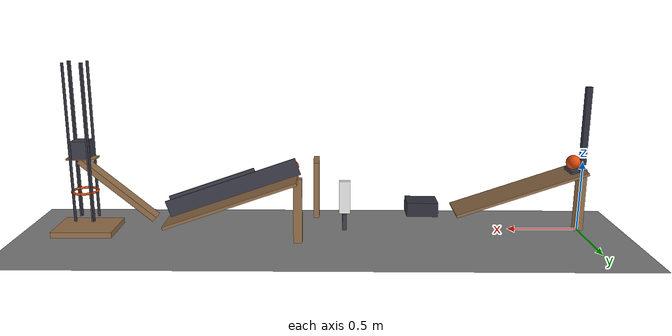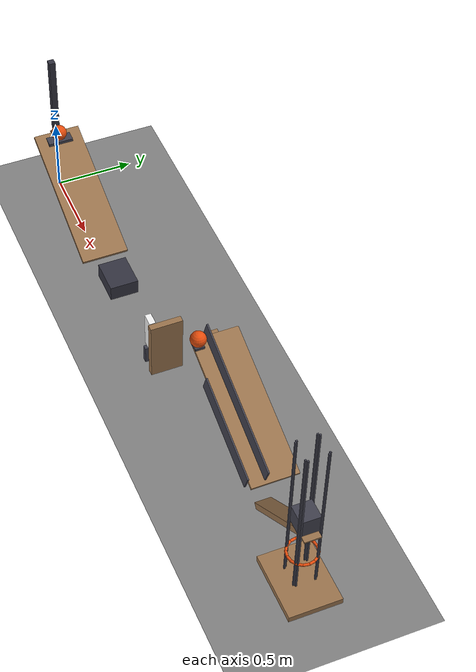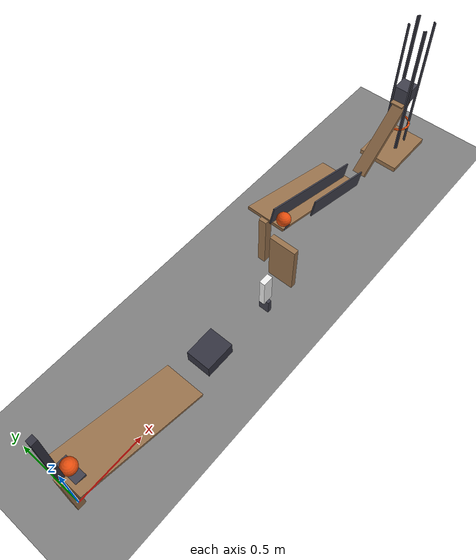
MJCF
<mujoco model="pendulum_ramp_relay_with_guided_second_ball">
  <compiler angle="radian"/>
  <option timestep="0.002"/>
  <worldbody>
    <geom name="floor" type="plane" size="12 12 0.1" friction="0.68 0 0.002"/>
    <body name="ramp1">
      <geom name="ramp1_deck" type="box" pos="0.449121 0 0.29519" size="0.475 0.15 0.01" euler="0 0.331613 0" friction="0.68 0 0.002" solref="0.01 1" rgba="0.6 0.45 0.3 1"/>
      <geom name="ramp1_leg" type="box" pos="0 0 0.224917" size="0.03 0.03 0.224917" friction="0.68 0 0.002" solref="0.01 1" rgba="0.6 0.45 0.3 1"/>
    </body>
    <body name="ball1 starting shelf">
      <geom name="ball1 starting shelf" type="box" pos="0.05 0 0.44" size="0.05 0.08 0.01" friction="0.68 0 0.002" solref="0.01 1" rgba="0.25 0.25 0.3 1"/>
    </body>
    <body name="ball1" pos="0.06681 0 0.5">
      <freejoint/>
      <geom name="ball1" type="sphere" pos="0 0 0" size="0.05" mass="0.2" condim="6" friction="0.68 0 0.002" solref="0.01 1" rgba="0.9 0.3 0.05 1"/>
    </body>
    <body name="pendulum1" pos="0.00181 0 1.035">
      <joint name="pendulum_hinge" type="hinge" pos="0 0 0" axis="0 1 0" limited="true" range="-0.261799 0.959931" damping="0.04"/>
      <geom name="pendulum1" type="box" pos="0 0 -0.275" size="0.02 0.02 0.275" mass="0.4" friction="0.68 0 0.002" solref="0.01 1" rgba="0.2 0.2 0.25 1"/>
    </body>
    <body name="cart1" pos="1.1315 0 100.17">
      <joint name="cart_guide_hinge" type="hinge" pos="0 0 0" axis="0 1 0" limited="true" range="-0.00460002 0" damping="2000"/>
      <geom name="cart1" type="box" pos="0 0 -100" size="0.11 0.09 0.05" mass="0.5" friction="0.68 0 0.002" solref="0.01 1" rgba="0.2 0.2 0.25 1"/>
    </body>
    <body name="domino pedestal">
      <geom name="domino pedestal" type="box" pos="1.6815 0 0.059" size="0.015 0.04 0.059" friction="0.68 0 0.002" solref="0.01 1" rgba="0.25 0.25 0.3 1"/>
    </body>
    <body name="domino1" pos="1.6815 0 0.238">
      <freejoint/>
      <geom name="domino1" type="box" pos="0 0 0" size="0.04 0.02 0.12" mass="0.25" friction="0.68 0 0.002" solref="0.01 1" rgba="0.95 0.95 0.95 1"/>
    </body>
    <body name="flap1" pos="1.8815 0.02 0.12">
      <joint name="flap_hinge" type="hinge" pos="0 0 0" axis="0 1 0" limited="true" range="0 1.13446" damping="0.04"/>
      <geom name="flap1" type="box" pos="0 0 0.2" size="0.02 0.1 0.2" mass="0.3" friction="0.68 0 0.002" solref="0.01 1" rgba="0.6 0.45 0.3 1"/>
    </body>
    <body name="ramp2">
      <geom name="ramp2_deck" type="box" pos="2.45412 0.275 0.29519" size="0.475 0.15 0.01" euler="0 0.331613 0" friction="0.68 0 0.002" solref="0.01 1" rgba="0.6 0.45 0.3 1"/>
      <geom name="ramp2_leg" type="box" pos="2.005 0.275 0.224917" size="0.03 0.03 0.224917" friction="0.68 0 0.002" solref="0.01 1" rgba="0.6 0.45 0.3 1"/>
    </body>
    <body name="ramp2 left guide">
      <geom name="ramp2 left guide" type="box" pos="2.45412 0.22 0.36519" size="0.475 0.005 0.06" euler="0 0.331613 0" friction="0.68 0 0.002" solref="0.01 1" rgba="0.25 0.25 0.3 1"/>
    </body>
    <body name="ramp2 right guide">
      <geom name="ramp2 right guide" type="box" pos="2.60162 0.095 0.314401" size="0.319001 0.005 0.06" euler="0 0.331613 0" friction="0.68 0 0.002" solref="0.01 1" rgba="0.25 0.25 0.3 1"/>
    </body>
    <body name="ball2 starting shelf">
      <geom name="ball2 starting shelf" type="box" pos="2.05 0.155 0.44" size="0.03 0.03 0.01" friction="0.68 0 0.002" solref="0.01 1" rgba="0.25 0.25 0.3 1"/>
    </body>
    <body name="ball2" pos="2.05 0.155 0.5">
      <freejoint/>
      <geom name="ball2" type="sphere" pos="0 0 0" size="0.05" mass="0.2" condim="6" friction="0.68 0 0.002" solref="0.01 1" rgba="0.9 0.3 0.05 1"/>
    </body>
    <body name="seesaw1" pos="3.25546 0.155 0.338906">
      <joint name="seesaw_hinge" type="hinge" pos="0 0 0" axis="0 1 0" limited="true" range="-0.698132 0" stiffness="1" springref="-0.698132" damping="0.04"/>
      <geom name="seesaw1" type="box" pos="-5e-09 0 -5e-09" size="0.325 0.05 0.02" euler="0 -0.698132 0" mass="0.545" friction="0.68 0 0.002" solref="0.01 1" rgba="0.6 0.45 0.3 1"/>
      <geom name="block cradle" type="box" pos="0.236109 0 0.219227" size="0.1 0.05 0.005" mass="0.005" friction="0.68 0 0.002" solref="0.01 1" rgba="0.6 0.45 0.3 1"/>
    </body>
    <body name="block1" pos="3.49157 0.155 0.623133">
      <freejoint/>
      <geom name="block1" type="box" pos="0 0 0" size="0.06 0.06 0.06" mass="0.35" friction="0.68 0 0.002" solref="0.01 1" rgba="0.25 0.25 0.3 1"/>
    </body>
    <body name="guide near left">
      <geom name="guide near left" type="box" pos="3.42457 0.2125 0.67" size="0.005 0.005 0.55" friction="0.68 0 0.002" solref="0.01 1" rgba="0.25 0.25 0.3 1"/>
    </body>
    <body name="guide near right">
      <geom name="guide near right" type="box" pos="3.42457 0.0975 0.67" size="0.005 0.005 0.55" friction="0.68 0 0.002" solref="0.01 1" rgba="0.25 0.25 0.3 1"/>
    </body>
    <body name="guide far left">
      <geom name="guide far left" type="box" pos="3.55857 0.2125 0.67" size="0.005 0.005 0.55" friction="0.68 0 0.002" solref="0.01 1" rgba="0.25 0.25 0.3 1"/>
    </body>
    <body name="guide far right">
      <geom name="guide far right" type="box" pos="3.55857 0.0975 0.67" size="0.005 0.005 0.55" friction="0.68 0 0.002" solref="0.01 1" rgba="0.25 0.25 0.3 1"/>
    </body>
    <body name="guide left near">
      <geom name="guide left near" type="box" pos="3.43407 0.222 0.67" size="0.005 0.005 0.55" friction="0.68 0 0.002" solref="0.01 1" rgba="0.25 0.25 0.3 1"/>
    </body>
    <body name="guide left far">
      <geom name="guide left far" type="box" pos="3.54907 0.222 0.67" size="0.005 0.005 0.55" friction="0.68 0 0.002" solref="0.01 1" rgba="0.25 0.25 0.3 1"/>
    </body>
    <body name="guide right near">
      <geom name="guide right near" type="box" pos="3.43407 0.088 0.67" size="0.005 0.005 0.55" friction="0.68 0 0.002" solref="0.01 1" rgba="0.25 0.25 0.3 1"/>
    </body>
    <body name="guide right far">
      <geom name="guide right far" type="box" pos="3.54907 0.088 0.67" size="0.005 0.005 0.55" friction="0.68 0 0.002" solref="0.01 1" rgba="0.25 0.25 0.3 1"/>
    </body>
    <body name="ring1">
      <geom name="ring1_00" type="capsule" size="0.008" fromto="3.57957 0.155 0.323133 3.57287 0.188676 0.323133" friction="0.68 0 0.002" solref="0.01 1" rgba="0.9 0.3 0.05 1"/>
      <geom name="ring1_01" type="capsule" size="0.008" fromto="3.57287 0.188676 0.323133 3.5538 0.217225 0.323133" friction="0.68 0 0.002" solref="0.01 1" rgba="0.9 0.3 0.05 1"/>
      <geom name="ring1_02" type="capsule" size="0.008" fromto="3.5538 0.217225 0.323133 3.52525 0.236301 0.323133" friction="0.68 0 0.002" solref="0.01 1" rgba="0.9 0.3 0.05 1"/>
      <geom name="ring1_03" type="capsule" size="0.008" fromto="3.52525 0.236301 0.323133 3.49157 0.243 0.323133" friction="0.68 0 0.002" solref="0.01 1" rgba="0.9 0.3 0.05 1"/>
      <geom name="ring1_04" type="capsule" size="0.008" fromto="3.49157 0.243 0.323133 3.4579 0.236301 0.323133" friction="0.68 0 0.002" solref="0.01 1" rgba="0.9 0.3 0.05 1"/>
      <geom name="ring1_05" type="capsule" size="0.008" fromto="3.4579 0.236301 0.323133 3.42935 0.217225 0.323133" friction="0.68 0 0.002" solref="0.01 1" rgba="0.9 0.3 0.05 1"/>
      <geom name="ring1_06" type="capsule" size="0.008" fromto="3.42935 0.217225 0.323133 3.41027 0.188676 0.323133" friction="0.68 0 0.002" solref="0.01 1" rgba="0.9 0.3 0.05 1"/>
      <geom name="ring1_07" type="capsule" size="0.008" fromto="3.41027 0.188676 0.323133 3.40357 0.155 0.323133" friction="0.68 0 0.002" solref="0.01 1" rgba="0.9 0.3 0.05 1"/>
      <geom name="ring1_08" type="capsule" size="0.008" fromto="3.40357 0.155 0.323133 3.41027 0.121324 0.323133" friction="0.68 0 0.002" solref="0.01 1" rgba="0.9 0.3 0.05 1"/>
      <geom name="ring1_09" type="capsule" size="0.008" fromto="3.41027 0.121324 0.323133 3.42935 0.0927746 0.323133" friction="0.68 0 0.002" solref="0.01 1" rgba="0.9 0.3 0.05 1"/>
      <geom name="ring1_10" type="capsule" size="0.008" fromto="3.42935 0.0927746 0.323133 3.4579 0.0736986 0.323133" friction="0.68 0 0.002" solref="0.01 1" rgba="0.9 0.3 0.05 1"/>
      <geom name="ring1_11" type="capsule" size="0.008" fromto="3.4579 0.0736986 0.323133 3.49157 0.067 0.323133" friction="0.68 0 0.002" solref="0.01 1" rgba="0.9 0.3 0.05 1"/>
      <geom name="ring1_12" type="capsule" size="0.008" fromto="3.49157 0.067 0.323133 3.52525 0.0736986 0.323133" friction="0.68 0 0.002" solref="0.01 1" rgba="0.9 0.3 0.05 1"/>
      <geom name="ring1_13" type="capsule" size="0.008" fromto="3.52525 0.0736986 0.323133 3.5538 0.0927746 0.323133" friction="0.68 0 0.002" solref="0.01 1" rgba="0.9 0.3 0.05 1"/>
      <geom name="ring1_14" type="capsule" size="0.008" fromto="3.5538 0.0927746 0.323133 3.57287 0.121324 0.323133" friction="0.68 0 0.002" solref="0.01 1" rgba="0.9 0.3 0.05 1"/>
      <geom name="ring1_15" type="capsule" size="0.008" fromto="3.57287 0.121324 0.323133 3.57957 0.155 0.323133" friction="0.68 0 0.002" solref="0.01 1" rgba="0.9 0.3 0.05 1"/>
    </body>
    <body name="door1" pos="3.28157 0.155 0.0531328">
      <joint name="door_hinge" type="hinge" pos="0 0 0" axis="0 1 0" limited="true" range="0 1.13446" stiffness="6" springref="-0.174533" damping="0.04"/>
      <geom name="door1" type="box" pos="0.21 0 0" size="0.21 0.16 0.02" mass="0.45" friction="0.68 0 0.002" solref="0.01 1" rgba="0.6 0.45 0.3 1"/>
    </body>
  </worldbody>
  <keyframe>
    <key name="start" qpos="0.06681 0 0.5 1 0 0 0 0.959931 0 1.6815 0 0.238 1 0 0 0 0 2.05 0.155 0.5 1 0 0 0 0 3.49157 0.155 0.623133 1 0 0 0 0" qvel="0 0 0 0 0 0 0 0 0 0 0 0 0 0 0 0 0 0 0 0 0 0 0 0 0 0 0 0 0"/>
  </keyframe>
</mujoco>
